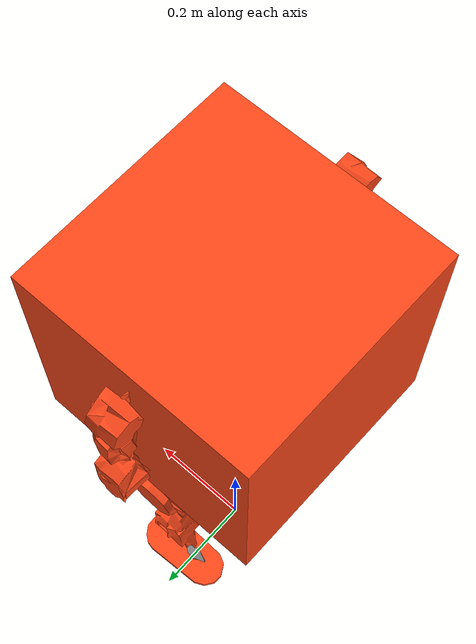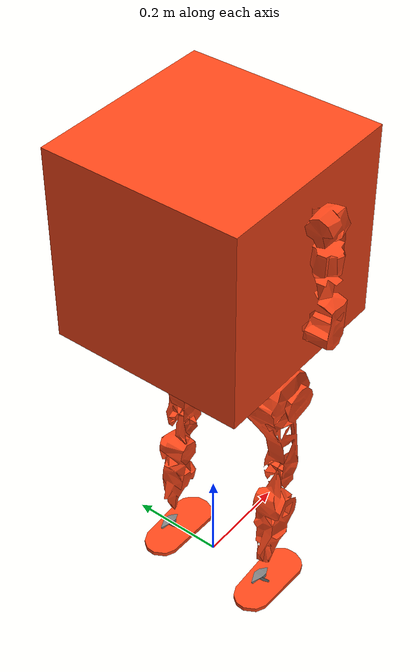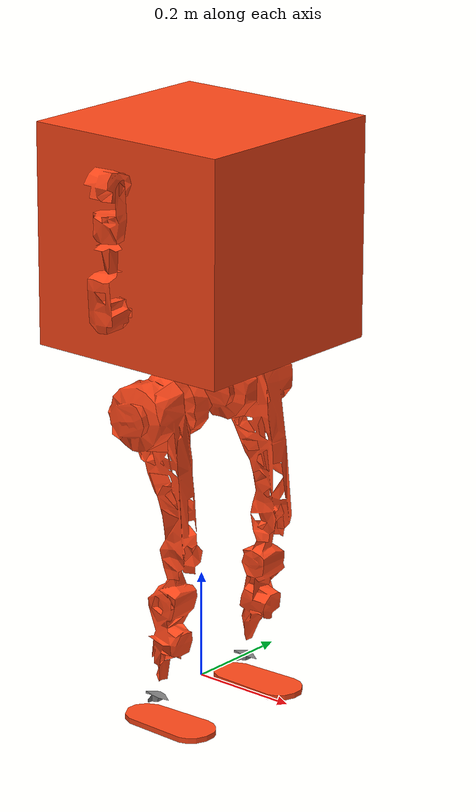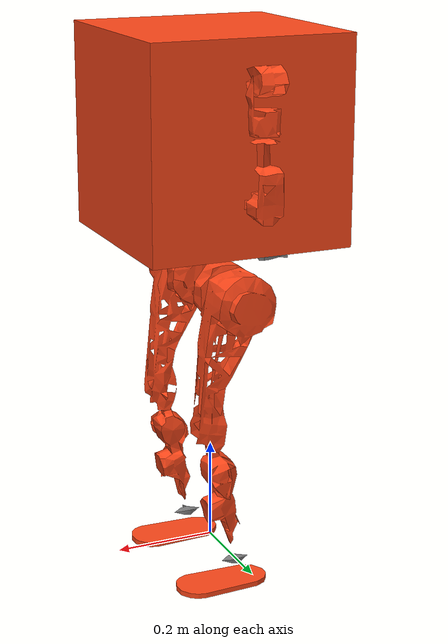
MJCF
<mujoco model="Dora2">
  <default>
    <default class="robot">
      <default class="motor">
        <joint />
        <motor />
      </default>
      <default class="visual">
        <geom material="visualgeom" contype="0" conaffinity="0" group="2" />
      </default>
      <default class="collision">
        <geom material="collision_material" condim="3" contype="0" conaffinity="1" priority="1" group="1" solref="0.005 1" friction="1 0.01 0.01" />
        <equality solimp="0.99 0.999 1e-05" solref="0.005 1" />
      </default>
    </default>
  </default>

  <compiler angle="radian" />

  <asset>
    <material name="" rgba="0.89804 0.91765 0.92941 1" />
    <material name="default_material" rgba="0.7 0.7 0.7 1" />
    <material name="collision_material" rgba="1.0 0.28 0.1 0.9" />
    <mesh name="base_link.STL" file="../meshes/base_link.STL" />
    <mesh name="l_arm_shoulder_pitch_Link.STL" file="../meshes/l_arm_shoulder_pitch_Link.STL" />
    <mesh name="l_arm_shoulder_roll_Link.STL" file="../meshes/l_arm_shoulder_roll_Link.STL" />
    <mesh name="l_arm_shoulder_yaw_Link.STL" file="../meshes/l_arm_shoulder_yaw_Link.STL" />
    <mesh name="l_arm_elbow_Link.STL" file="../meshes/l_arm_elbow_Link.STL" />
    <mesh name="r_arm_shoulder_pitch_Link.STL" file="../meshes/r_arm_shoulder_pitch_Link.STL" />
    <mesh name="r_arm_shoulder_roll_Link.STL" file="../meshes/r_arm_shoulder_roll_Link.STL" />
    <mesh name="r_arm_shoulder_yaw_Link.STL" file="../meshes/r_arm_shoulder_yaw_Link.STL" />
    <mesh name="r_arm_elbow_Link.STL" file="../meshes/r_arm_elbow_Link.STL" />
    <mesh name="l_leg_hip_roll_Link.STL" file="../meshes/l_leg_hip_roll_Link.STL" />
    <mesh name="l_leg_hip_yaw_Link.STL" file="../meshes/l_leg_hip_yaw_Link.STL" />
    <mesh name="l_leg_hip_pitch_Link.STL" file="../meshes/l_leg_hip_pitch_Link.STL" />
    <mesh name="l_leg_knee_Link.STL" file="../meshes/l_leg_knee_Link.STL" />
    <mesh name="l_leg_ankle_pitch_Link.STL" file="../meshes/l_leg_ankle_pitch_Link.STL" />
    <mesh name="l_leg_ankle_roll_Link.STL" file="../meshes/l_leg_ankle_roll_Link.STL" />
    <mesh name="r_leg_hip_roll_Link.STL" file="../meshes/r_leg_hip_roll_Link.STL" />
    <mesh name="r_leg_hip_yaw_Link.STL" file="../meshes/r_leg_hip_yaw_Link.STL" />
    <mesh name="r_leg_hip_pitch_Link.STL" file="../meshes/r_leg_hip_pitch_Link.STL" />
    <mesh name="r_leg_knee_Link.STL" file="../meshes/r_leg_knee_Link.STL" />
    <mesh name="r_leg_ankle_pitch_Link.STL" file="../meshes/r_leg_ankle_pitch_Link.STL" />
    <mesh name="r_leg_ankle_roll_Link.STL" file="../meshes/r_leg_ankle_roll_Link.STL" />
  </asset>

  <worldbody>
    <body name="base_link" pos="0.00000000 0.00000000 0.73753662" quat="1 0 0 0" childclass="robot">
      <freejoint name="floating_base" />
      <geom name="base_link_collision" pos="0 0. 0.1" quat="1.0 0.0 0.0 0.0" type="box" size="0.2 0.2 0.2" class="collision" />
      <geom name="base_link_visual" pos="0 0 0" quat="1.0 0.0 0.0 0.0" material="" type="mesh" mesh="base_link.STL" class="visual" />
      <body name="l_arm_shoulder_pitch_Link" pos="0 0.16535 0.20168" quat="0.8191607844652009 -0.573563953883398 0.0 0.0">
        <inertial pos="-0.0032277 -0.00090287 0.064029" quat="1.0 0.0 0.0 0.0" mass="0.47485" diaginertia="0.00026491 0.00023165 0.00018067" />
        <geom name="l_arm_shoulder_pitch_Link_collision" pos="0 0 0" quat="1.0 0.0 0.0 0.0" type="mesh" mesh="l_arm_shoulder_pitch_Link.STL" class="collision" />
        <geom name="l_arm_shoulder_pitch_Link_visual" pos="0 0 0" quat="1.0 0.0 0.0 0.0" material="" type="mesh" mesh="l_arm_shoulder_pitch_Link.STL" class="visual" />
        <body name="l_arm_shoulder_roll_Link" pos="0 0 0.07625" quat="0.8191607844652009 0.573563953883398 0.0 0.0">
          <inertial pos="0.00482434461878539 -0.000218754304780355 -0.066684892346818" quat="1.0 0.0 0.0 0.0" mass="0.369997353872883" diaginertia="0.000197558683212289 0.00020014685176238 0.000160207650697516" />
          <geom name="l_arm_shoulder_roll_Link_collision" pos="0 0 0" quat="1.0 0.0 0.0 0.0" type="mesh" mesh="l_arm_shoulder_roll_Link.STL" class="collision" />
          <geom name="l_arm_shoulder_roll_Link_visual" pos="0 0 0" quat="1.0 0.0 0.0 0.0" material="" type="mesh" mesh="l_arm_shoulder_roll_Link.STL" class="visual" />
          <body name="l_arm_shoulder_yaw_Link" pos="0 0 -0.108" quat="1.0 0.0 0.0 0.0">
            <inertial pos="-4.03282683863471E-05 0.00245809993860069 -0.0964013469128064" quat="1.0 0.0 0.0 0.0" mass="0.385684351005629" diaginertia="0.000140770233725746 0.000170456017896524 0.000126959258320037" />
            <geom name="l_arm_shoulder_yaw_Link_collision" pos="0 0 0" quat="1.0 0.0 0.0 0.0" type="mesh" mesh="l_arm_shoulder_yaw_Link.STL" class="collision" />
            <geom name="l_arm_shoulder_yaw_Link_visual" pos="0 0 0" quat="1.0 0.0 0.0 0.0" material="" type="mesh" mesh="l_arm_shoulder_yaw_Link.STL" class="visual" />
            <body name="l_arm_elbow_Link" pos="0 -0.017 -0.11875" quat="1.0 0.0 0.0 0.0">
              <inertial pos="0.000783882641962441 -0.0071164610235743 -0.000187670615894142" quat="1.0 0.0 0.0 0.0" mass="0.0234686345431745" diaginertia="4.69343397566853e-06 9.07836938758881e-06 5.08242714541202e-06" />
              <geom name="l_arm_elbow_Link_collision" pos="0 0 0" quat="1.0 0.0 0.0 0.0" type="mesh" mesh="l_arm_elbow_Link.STL" class="collision" />
              <geom name="l_arm_elbow_Link_visual" pos="0 0 0" quat="1.0 0.0 0.0 0.0" material="" type="mesh" mesh="l_arm_elbow_Link.STL" class="visual" />
            </body>
          </body>
        </body>
      </body>
      <body name="r_arm_shoulder_pitch_Link" pos="0 -0.16535 0.20168" quat="0.8191607844652009 0.573563953883398 0.0 0.0">
        <inertial pos="-0.0032277 0.00090287 0.064029" quat="1.0 0.0 0.0 0.0" mass="0.47485" diaginertia="0.00026491 0.00023165 0.00018067" />
        <geom name="r_arm_shoulder_pitch_Link_collision" pos="0 0 0" quat="1.0 0.0 0.0 0.0" type="mesh" mesh="r_arm_shoulder_pitch_Link.STL" class="collision" />
        <geom name="r_arm_shoulder_pitch_Link_visual" pos="0 0 0" quat="1.0 0.0 0.0 0.0" material="" type="mesh" mesh="r_arm_shoulder_pitch_Link.STL" class="visual" />
        <body name="r_arm_shoulder_roll_Link" pos="0 0 0.07625" quat="0.8191607844652009 -0.573563953883398 0.0 0.0">
          <inertial pos="0.00482434461878539 0.000218754304780355 -0.066684892346818" quat="1.0 0.0 0.0 0.0" mass="0.369997353872883" diaginertia="0.000197558683212289 0.00020014685176238 0.000160207650697516" />
          <geom name="r_arm_shoulder_roll_Link_collision" pos="0 0 0" quat="1.0 0.0 0.0 0.0" type="mesh" mesh="r_arm_shoulder_roll_Link.STL" class="collision" />
          <geom name="r_arm_shoulder_roll_Link_visual" pos="0 0 0" quat="1.0 0.0 0.0 0.0" material="" type="mesh" mesh="r_arm_shoulder_roll_Link.STL" class="visual" />
          <body name="r_arm_shoulder_yaw_Link" pos="0 0 -0.108" quat="1.0 0.0 0.0 0.0">
            <inertial pos="-4.03282683863471E-05 -0.00245809993860069 -0.0964013469128064" quat="1.0 0.0 0.0 0.0" mass="0.385684351005629" diaginertia="0.000140770233725746 0.000170456017896524 0.000126959258320037" />
            <geom name="r_arm_shoulder_yaw_Link_collision" pos="0 0 0" quat="1.0 0.0 0.0 0.0" type="mesh" mesh="r_arm_shoulder_yaw_Link.STL" class="collision" />
            <geom name="r_arm_shoulder_yaw_Link_visual" pos="0 0 0" quat="1.0 0.0 0.0 0.0" material="" type="mesh" mesh="r_arm_shoulder_yaw_Link.STL" class="visual" />
            <body name="r_arm_elbow_Link" pos="0 0.017 -0.11875" quat="1.0 0.0 0.0 0.0">
              <inertial pos="0.000783882643357436 0.00711646102274963 -0.000187670617232349" quat="1.0 0.0 0.0 0.0" mass="0.0234686345431746" diaginertia="4.69343397566855e-06 9.07836938758883e-06 5.08242714541201e-06" />
              <geom name="r_arm_elbow_Link_collision" pos="0 0 0" quat="1.0 0.0 0.0 0.0" type="mesh" mesh="r_arm_elbow_Link.STL" class="collision" />
              <geom name="r_arm_elbow_Link_visual" pos="0 0 0" quat="1.0 0.0 0.0 0.0" material="" type="mesh" mesh="r_arm_elbow_Link.STL" class="visual" />
            </body>
          </body>
        </body>
      </body>
      <body name="l_leg_hip_roll_Link" pos="-0.0792 0.09002 -0.085" quat="1.0 0.0 0.0 0.0">
        <joint name="l_leg_hip_roll_joint" type="hinge" ref="0.0" class="motor" range="-0.3 1" axis="1 0 0" />
        <inertial pos="0.073997 -2.6118E-05 -0.00038831" quat="1.0 0.0 0.0 0.0" mass="1.2237" diaginertia="0.0010875 0.0012014 0.0021103" />
        <geom name="l_leg_hip_roll_Link_visual" pos="0 0 0" quat="1.0 0.0 0.0 0.0" material="" type="mesh" mesh="l_leg_hip_roll_Link.STL" class="visual" />
        <body name="l_leg_hip_yaw_Link" pos="0.0815 0 -0.0375" quat="1.0 0.0 0.0 0.0">
          <joint name="l_leg_hip_yaw_joint" type="hinge" ref="0.0" class="motor" range="-0.75 1.05" axis="0 0 1" />
          <inertial pos="0.00018298 -0.018275 -0.069994" quat="1.0 0.0 0.0 0.0" mass="1.5439" diaginertia="0.0016181 0.0028764 0.0014519" />
          <geom name="l_leg_hip_yaw_Link_collision" pos="0 0 0" quat="1.0 0.0 0.0 0.0" type="mesh" mesh="l_leg_hip_yaw_Link.STL" class="collision" />
          <geom name="l_leg_hip_yaw_Link_visual" pos="0 0 0" quat="1.0 0.0 0.0 0.0" material="" type="mesh" mesh="l_leg_hip_yaw_Link.STL" class="visual" />
          <body name="l_leg_hip_pitch_Link" pos="0 0 -0.076" quat="0.9950041652780258 0.0 -0.09983341664682815 0.0">
            <joint name="l_leg_hip_pitch_joint" type="hinge" ref="0.0" class="motor" range="-1.12 0.88" axis="0 1 0" />
            <inertial pos="0.00263050346808996 0.0505924691116392 -0.0509281264870309" quat="1.0 0.0 0.0 0.0" mass="2.63780166885626" diaginertia="0.0128050639410327 0.0146659167630542 0.00218142025359868" />
            <geom name="l_leg_hip_pitch_Link_collision" pos="0 0 0" quat="1.0 0.0 0.0 0.0" type="mesh" mesh="l_leg_hip_pitch_Link.STL" class="collision" />
            <geom name="l_leg_hip_pitch_Link_visual" pos="0 0 0" quat="1.0 0.0 0.0 0.0" material="" type="mesh" mesh="l_leg_hip_pitch_Link.STL" class="visual" />
            <body name="l_leg_knee_Link" pos="0 0.032659 -0.27" quat="0.9800665778412416 0.0 0.19866933079506122 0.0">
              <joint name="l_leg_knee_joint" type="hinge" ref="0.0" class="motor" range="-0.28 1.6" axis="0 1 0" />
              <inertial pos="0.0026677 0.0022197 -0.12804" quat="1.0 0.0 0.0 0.0" mass="1.3457" diaginertia="0.0022506 0.0022436 0.00046377" />
              <geom name="l_leg_knee_Link_collision" pos="0 0 0" quat="1.0 0.0 0.0 0.0" type="mesh" mesh="l_leg_knee_Link.STL" class="collision" />
              <geom name="l_leg_knee_Link_visual" pos="0 0 0" quat="1.0 0.0 0.0 0.0" material="" type="mesh" mesh="l_leg_knee_Link.STL" class="visual" />
              <body name="l_leg_ankle_pitch_Link" pos="0 0 -0.28" quat="0.9950041652780258 0.0 -0.09983341664682815 0.0">
                <joint name="l_leg_ankle_pitch_joint" type="hinge" ref="0.0" class="motor" range="-0.48 0.88" axis="0 1 0" />
                <inertial pos="0.0010416 3.8669E-09 -9.735E-10" quat="1.0 0.0 0.0 0.0" mass="0.089954" diaginertia="1.1624e-05 1.4297e-05 2.1929e-05" />
                <geom name="l_leg_ankle_pitch_Link_visual" pos="0 0 0" quat="1.0 0.0 0.0 0.0" material="" type="mesh" mesh="l_leg_ankle_pitch_Link.STL" class="visual" />
                <body name="l_leg_ankle_roll_Link" pos="0 0 0" quat="1.0 0.0 0.0 0.0">
                  <joint name="l_leg_ankle_roll_joint" type="hinge" ref="0.0" class="motor" range="-0.5 0.5" axis="1 0 0" />
                  <inertial pos="0.0095635 2.5209E-05 -0.027782" quat="1.0 0.0 0.0 0.0" mass="0.44211" diaginertia="0.00017944 0.00072413 0.00087034" />
                  <geom name="l_leg_ankle_roll_Link_collision" pos="0 0 0" quat="1.0 0.0 0.0 0.0" type="mesh" mesh="l_leg_ankle_roll_Link.STL" class="collision" />
                  <geom name="l_leg_ankle_roll_Link_visual" pos="0 0 0" quat="1.0 0.0 0.0 0.0" material="" type="mesh" mesh="l_leg_ankle_roll_Link.STL" class="visual" />
                </body>
              </body>
            </body>
          </body>
        </body>
      </body>
      <body name="r_leg_hip_roll_Link" pos="-0.0792 -0.09002 -0.085" quat="1.0 0.0 0.0 0.0">
        <joint name="r_leg_hip_roll_joint" type="hinge" ref="0.0" class="motor" range="-1 0.3" axis="1 0 0" />
        <inertial pos="0.073997 -2.6118E-05 -0.00038831" quat="1.0 0.0 0.0 0.0" mass="1.2237" diaginertia="0.0010875 0.0012014 0.0021103" />
        <geom name="r_leg_hip_roll_Link_visual" pos="0 0 0" quat="1.0 0.0 0.0 0.0" material="" type="mesh" mesh="r_leg_hip_roll_Link.STL" class="visual" />
        <body name="r_leg_hip_yaw_Link" pos="0.0815 0 -0.0375" quat="1.0 0.0 0.0 0.0">
          <joint name="r_leg_hip_yaw_joint" type="hinge" ref="0.0" class="motor" range="-1.05 0.75" axis="0 0 1" />
          <inertial pos="0.00018298 0.018275 -0.069994" quat="1.0 0.0 0.0 0.0" mass="1.5439" diaginertia="0.0016181 0.0028764 0.0014519" />
          <geom name="r_leg_hip_yaw_Link_collision" pos="0 0 0" quat="1.0 0.0 0.0 0.0" type="mesh" mesh="r_leg_hip_yaw_Link.STL" class="collision" />
          <geom name="r_leg_hip_yaw_Link_visual" pos="0 0 0" quat="1.0 0.0 0.0 0.0" material="" type="mesh" mesh="r_leg_hip_yaw_Link.STL" class="visual" />
          <body name="r_leg_hip_pitch_Link" pos="0 0 -0.076" quat="0.9950041652780258 0.0 -0.09983341664682815 0.0">
            <joint name="r_leg_hip_pitch_joint" type="hinge" ref="0.0" class="motor" range="-1.12 0.88" axis="0 1 0" />
            <inertial pos="0.00263050346808996 -0.0505924691116392 -0.0509281264870309" quat="1.0 0.0 0.0 0.0" mass="2.63780166885626" diaginertia="0.0128050639410327 0.0146659167630542 0.00218142025359868" />
            <geom name="r_leg_hip_pitch_Link_collision" pos="0 0 0" quat="1.0 0.0 0.0 0.0" type="mesh" mesh="r_leg_hip_pitch_Link.STL" class="collision" />
            <geom name="r_leg_hip_pitch_Link_visual" pos="0 0 0" quat="1.0 0.0 0.0 0.0" material="" type="mesh" mesh="r_leg_hip_pitch_Link.STL" class="visual" />
            <body name="r_leg_knee_Link" pos="0 -0.032659 -0.27" quat="0.9800665778412416 0.0 0.19866933079506122 0.0">
              <joint name="r_leg_knee_joint" type="hinge" ref="0.0" class="motor" range="-0.28 1.6" axis="0 1 0" />
              <inertial pos="0.0026677 -0.0022197 -0.12804" quat="1.0 0.0 0.0 0.0" mass="1.3457" diaginertia="0.0022506 0.0022436 0.00046377" />
              <geom name="r_leg_knee_Link_collision" pos="0 0 0" quat="1.0 0.0 0.0 0.0" type="mesh" mesh="r_leg_knee_Link.STL" class="collision" />
              <geom name="r_leg_knee_Link_visual" pos="0 0 0" quat="1.0 0.0 0.0 0.0" material="" type="mesh" mesh="r_leg_knee_Link.STL" class="visual" />
              <body name="r_leg_ankle_pitch_Link" pos="0 0 -0.28" quat="0.9950041652780258 0.0 -0.09983341664682815 0.0">
                <joint name="r_leg_ankle_pitch_joint" type="hinge" ref="0.0" class="motor" range="-0.48 0.88" axis="0 1 0" />
                <inertial pos="0.0010416 -3.8669E-09 -9.735E-10" quat="1.0 0.0 0.0 0.0" mass="0.089954" diaginertia="1.1624e-05 1.4297e-05 2.1929e-05" />
                <geom name="r_leg_ankle_pitch_Link_visual" pos="0 0 0" quat="1.0 0.0 0.0 0.0" material="" type="mesh" mesh="r_leg_ankle_pitch_Link.STL" class="visual" />
                <body name="r_leg_ankle_roll_Link" pos="0 0 0" quat="1.0 0.0 0.0 0.0">
                  <joint name="r_leg_ankle_roll_joint" type="hinge" ref="0.0" class="motor" range="-0.5 0.5" axis="1 0 0" />
                  <inertial pos="0.0095635 -2.5209E-05 -0.027782" quat="1.0 0.0 0.0 0.0" mass="0.44211" diaginertia="0.00017944 0.00072413 0.00087034" />
                  <geom name="r_leg_ankle_roll_Link_collision" pos="0 0 0" quat="1.0 0.0 0.0 0.0" type="mesh" mesh="r_leg_ankle_roll_Link.STL" class="collision" />
                  <geom name="r_leg_ankle_roll_Link_visual" pos="0 0 0" quat="1.0 0.0 0.0 0.0" material="" type="mesh" mesh="r_leg_ankle_roll_Link.STL" class="visual" />
                </body>
              </body>
            </body>
          </body>
        </body>
      </body>
      <site name="base_link_site" pos="0 0 0" quat="1 0 0 0" />
      <camera name="front_camera" mode="track" fovy="90.0" quat="4.329780281177467e-17 4.329780281177466e-17 0.7071067811865475 0.7071067811865476" pos="0.0 2.0 0.5" />
      <camera name="side_camera" mode="track" fovy="90.0" quat="-0.5 -0.4999999999999999 0.5 0.5000000000000001" pos="-2.0 0.0 0.5" />
    </body>
  </worldbody>

  <actuator>
    <motor name="l_leg_hip_roll_joint_ctrl" joint="l_leg_hip_roll_joint" class="motor" />
    <motor name="l_leg_hip_yaw_joint_ctrl" joint="l_leg_hip_yaw_joint" class="motor" />
    <motor name="l_leg_hip_pitch_joint_ctrl" joint="l_leg_hip_pitch_joint" class="motor" />
    <motor name="l_leg_knee_joint_ctrl" joint="l_leg_knee_joint" class="motor" />
    <motor name="l_leg_ankle_pitch_joint_ctrl" joint="l_leg_ankle_pitch_joint" class="motor" />
    <motor name="l_leg_ankle_roll_joint_ctrl" joint="l_leg_ankle_roll_joint" class="motor" />
    <motor name="r_leg_hip_roll_joint_ctrl" joint="r_leg_hip_roll_joint" class="motor" />
    <motor name="r_leg_hip_yaw_joint_ctrl" joint="r_leg_hip_yaw_joint" class="motor" />
    <motor name="r_leg_hip_pitch_joint_ctrl" joint="r_leg_hip_pitch_joint" class="motor" />
    <motor name="r_leg_knee_joint_ctrl" joint="r_leg_knee_joint" class="motor" />
    <motor name="r_leg_ankle_pitch_joint_ctrl" joint="r_leg_ankle_pitch_joint" class="motor" />
    <motor name="r_leg_ankle_roll_joint_ctrl" joint="r_leg_ankle_roll_joint" class="motor" />
  </actuator>

  <contact>
    <exclude body1="base_link" body2="l_arm_shoulder_pitch_Link" />
    <exclude body1="l_arm_shoulder_pitch_Link" body2="l_arm_shoulder_roll_Link" />
    <exclude body1="l_arm_shoulder_roll_Link" body2="l_arm_shoulder_yaw_Link" />
    <exclude body1="l_arm_shoulder_yaw_Link" body2="l_arm_elbow_Link" />
    <exclude body1="base_link" body2="r_arm_shoulder_pitch_Link" />
    <exclude body1="r_arm_shoulder_pitch_Link" body2="r_arm_shoulder_roll_Link" />
    <exclude body1="r_arm_shoulder_roll_Link" body2="r_arm_shoulder_yaw_Link" />
    <exclude body1="r_arm_shoulder_yaw_Link" body2="r_arm_elbow_Link" />
    <exclude body1="l_leg_hip_yaw_Link" body2="l_leg_hip_pitch_Link" />
    <exclude body1="l_leg_hip_pitch_Link" body2="l_leg_knee_Link" />
    <exclude body1="r_leg_hip_yaw_Link" body2="r_leg_hip_pitch_Link" />
    <exclude body1="r_leg_hip_pitch_Link" body2="r_leg_knee_Link" />
  </contact>

  <sensor>
    <framepos name="base_link_site_pos" objtype="site" objname="base_link_site" />
    <framequat name="base_link_site_quat" objtype="site" objname="base_link_site" />
    <framelinvel name="base_link_site_linvel" objtype="site" objname="base_link_site" />
    <frameangvel name="base_link_site_angvel" objtype="site" objname="base_link_site" />
    <velocimeter name="base_link_site_vel" site="base_link_site" />
  </sensor>
</mujoco>
